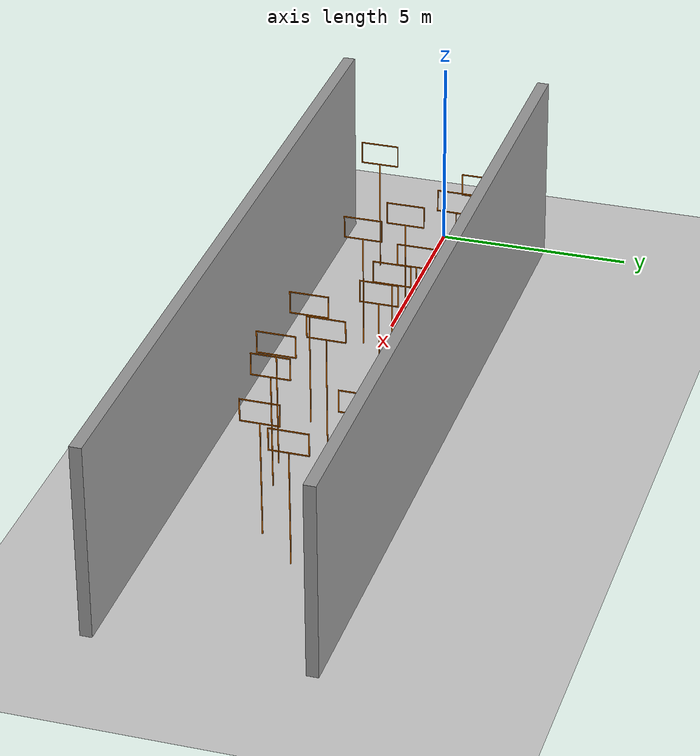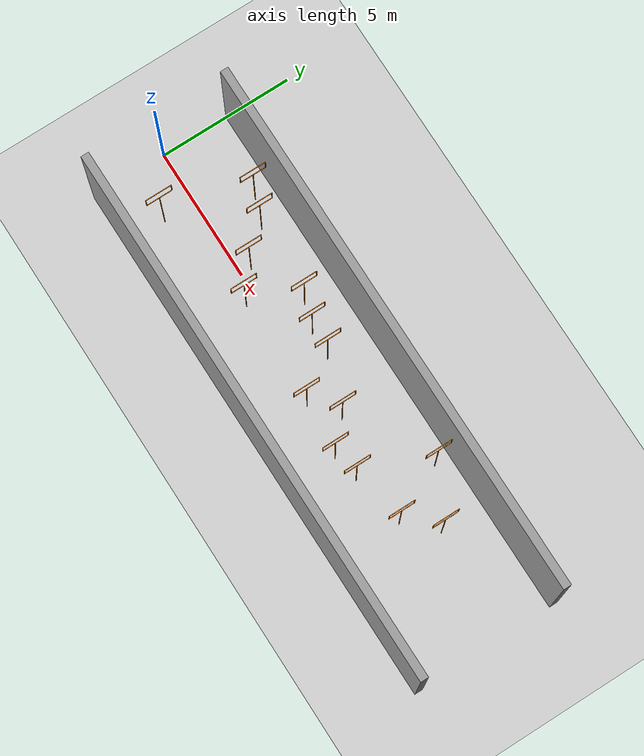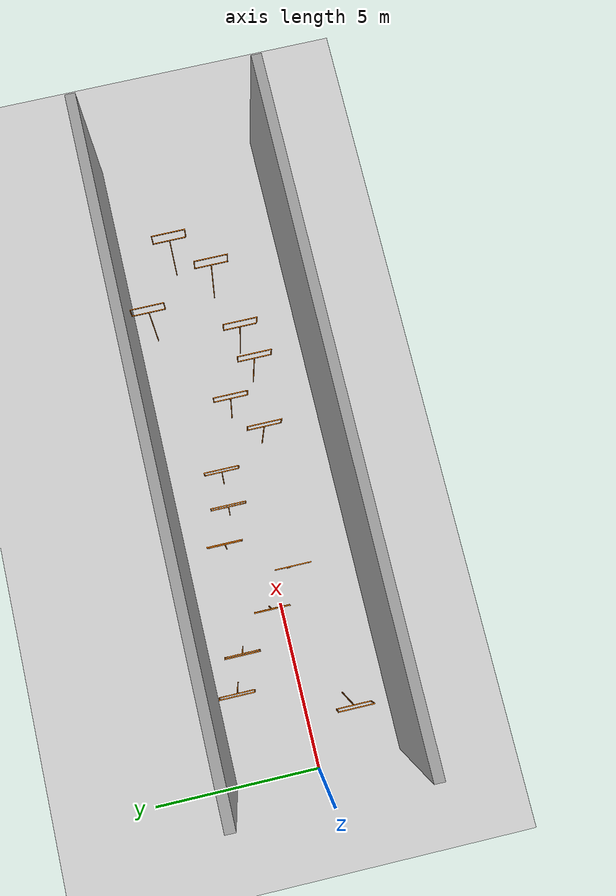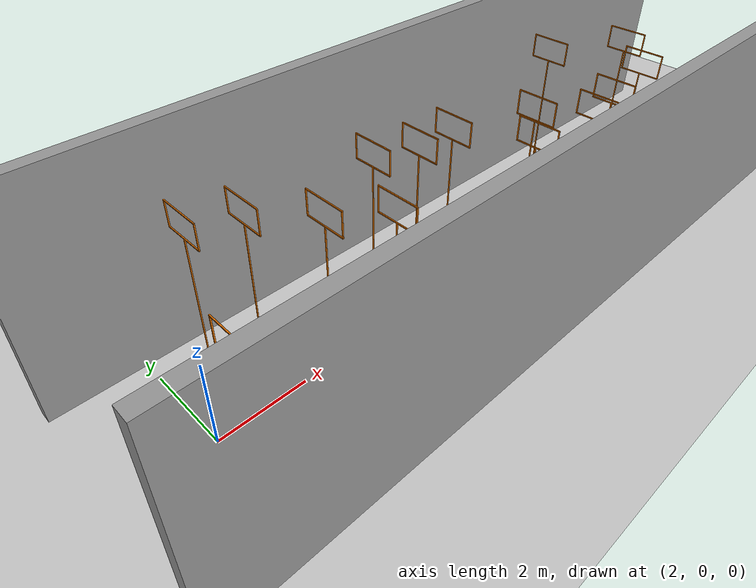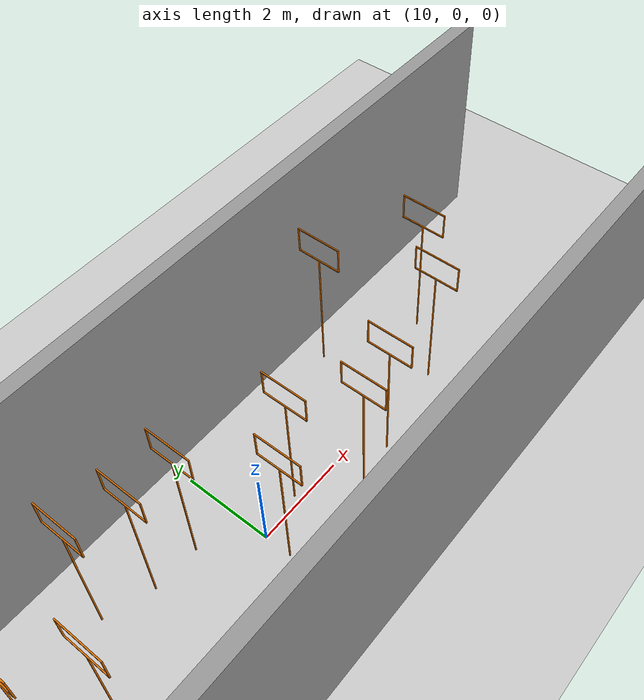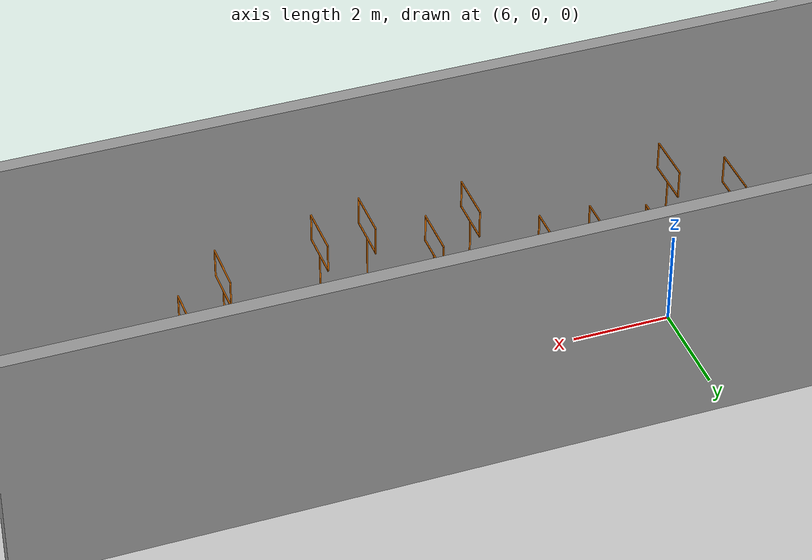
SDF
<sdf version='1.6'>
  <world name='default'>
    <plugin name='ros_interface_plugin' filename='librotors_gazebo_ros_interface_plugin.so' />
    <model name='ground_plane'>
      <static>1</static>
      <link name='link'>
        <collision name='collision'>
          <geometry>
            <plane>
              <normal>0 0 1</normal>
              <size>100 100</size>
            </plane>
          </geometry>
          <surface>
            <friction>
              <ode>
                <mu>100</mu>
                <mu2>50</mu2>
              </ode>
              <torsional>
                <ode/>
              </torsional>
            </friction>
            <contact>
              <ode/>
            </contact>
            <bounce/>
          </surface>
          <max_contacts>10</max_contacts>
        </collision>
        <visual name='visual'>
          <cast_shadows>0</cast_shadows>
          <geometry>
            <plane>
              <normal>0 0 1</normal>
              <size>100 100</size>
            </plane>
          </geometry>
          <material>
            <script>
              <uri>file://media/materials/scripts/gazebo.material</uri>
              <name>Gazebo/Grey</name>
            </script>
          </material>
        </visual>
        <self_collide>0</self_collide>
        <enable_wind>0</enable_wind>
        <kinematic>0</kinematic>
      </link>
    </model>
    <gravity>0 0 -9.8</gravity>
    <magnetic_field>6e-06 2.3e-05 -4.2e-05</magnetic_field>
    <atmosphere type='adiabatic'/>
    <physics name='default_physics' default='0' type='ode'>
      <max_step_size>0.001</max_step_size>
      <real_time_factor>1</real_time_factor>
      <real_time_update_rate>1000</real_time_update_rate>
    </physics>
    <scene>
      <ambient>0.4 0.4 0.4 1</ambient>
      <background>0.7 0.7 0.7 1</background>
      <shadows>1</shadows>
    </scene>
    <wind/>
    <spherical_coordinates>
      <surface_model>EARTH_WGS84</surface_model>
      <latitude_deg>0</latitude_deg>
      <longitude_deg>0</longitude_deg>
      <elevation>0</elevation>
      <heading_deg>0</heading_deg>
    </spherical_coordinates>
    <light name='sun' type='directional'>
      <pose frame=''>0 0 10 -0.3659 0.532611 2.936846</pose>
      <diffuse>0.8 0.8 0.8 1</diffuse>
      <specular>0.2 0.2 0.2 1</specular>
      <direction>0.4864 0.3039 -0.819</direction>
      <attenuation>
        <range>1000</range>
        <constant>0.9</constant>
        <linear>0.01</linear>
        <quadratic>0.001</quadratic>
      </attenuation>
      <cast_shadows>1</cast_shadows>
      <spot>
        <inner_angle>0</inner_angle>
        <outer_angle>0</outer_angle>
        <falloff>0</falloff>
      </spot>
    </light>

    <include>
      <uri>model://gate</uri>
      <name>gate_1</name>
      <pose>2.133424 -0.9237 0.239064 0 0 0</pose>
    </include>
    <include>
      <uri>model://gate</uri>
      <name>gate_2</name>
      <pose>3.133424 2.0830 0.239064 0 0 0</pose>
    </include>
    <include>
      <uri>model://gate</uri>
      <name>gate_3</name>
      <pose>4.133424 1.7060 0.239064 0 0 0</pose>
    </include>
    <include>
      <uri>model://gate</uri>
      <name>gate_4</name>
      <pose>5.133424 0.6510 0.239064 0 0 0</pose>
    </include>
    <include>
      <uri>model://gate</uri>
      <name>gate_5</name>
      <pose>6.133424 -0.1682 0.239064 0 0 0</pose>
    </include>
    <include>
      <uri>model://gate</uri>
      <name>gate_6</name>
      <pose>7.133424 1.5186 0.239064 0 0 0</pose>
    </include>
    <include>
      <uri>model://gate</uri>
      <name>gate_7</name>
      <pose>8.133424 1.1885 0.239064 0 0 0</pose>
    </include>
    <include>
      <uri>model://gate</uri>
      <name>gate_8</name>
      <pose>9.133424 1.1515 0.239064 0 0 0</pose>
    </include>
    <include>
      <uri>model://gate</uri>
      <name>gate_9</name>
      <pose>10.133424 -0.3045 0.239064 0 0 0</pose>
    </include>
    <include>
      <uri>model://gate</uri>
      <name>gate_10</name>
      <pose>11.133424 0.4409 0.239064 0 0 0</pose>
    </include>
    <include>
      <uri>model://gate</uri>
      <name>gate_11</name>
      <pose>12.133424 -0.4824 0.239064 0 0 0</pose>
    </include>
    <include>
      <uri>model://gate</uri>
      <name>gate_12</name>
      <pose>13.133424 -0.2929 0.239064 0 0 0</pose>
    </include>
    <include>
      <uri>model://gate</uri>
      <name>gate_13</name>
      <pose>14.133424 2.1794 0.239064 0 0 0</pose>
    </include>
    <include>
      <uri>model://gate</uri>
      <name>gate_14</name>
      <pose>15.133424 0.1100 0.239064 0 0 0</pose>
    </include>
    <include>
      <uri>model://gate</uri>
      <name>gate_15</name>
      <pose>16.133424 1.1337 0.239064 0 0 0</pose>
    </include>

    <include>
      <uri>model://sidewall</uri>
      <name>wall_1</name>
      <pose>10 2.65 2.5 1.5707963 0 0</pose>
    </include>
    <include>
      <uri>model://sidewall</uri>
      <name>wall_2</name>
      <pose>10 -2.65 2.5 1.5707963 0 0</pose>
    </include>
  </world>
</sdf>
1

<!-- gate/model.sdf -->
<sdf version="1.5">
  <model name="gate">
    <static>true</static>

    <include>
      <uri>model://stand_gate</uri>
      <name>stand</name>
      <pose>0 0 0 0 0 0</pose>
    </include>

    <include>
      <uri>model://side_gate</uri>
      <name>right_gate</name>
      <pose>-0.267448 -0.283849 0.097 0 0 0</pose>
    </include>

    <include>
      <uri>model://side_gate</uri>
      <name>left_gate</name>
      <pose>-0.267448 -1.257056 0.097 0 0 0</pose>
    </include>
    <include>

      <uri>model://top_gate</uri>
      <name>top_gate</name>
      <pose>-0.269443 -0.280891 0.091764 0 0 0</pose>
    </include>
  </model>
</sdf>

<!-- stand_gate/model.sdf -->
<sdf version="1.5">
  <model name="stand_gate">
    <static>true</static>
    <link name='link'>
      <collision name="collision">
        <geometry>
          <mesh>
            <uri>model://stand_gate/meshes/stand_gate.dae</uri>
            <scale>1 1 1</scale>
          </mesh>
        </geometry>
        <surface>
          <contact>
            <collide_bitmask>0xffff</collide_bitmask>
          </contact>
          <friction>
            <ode>
              <mu>100</mu>
              <mu2>50</mu2>
            </ode>
          </friction>
        </surface>
      </collision>
      <visual name='visual'>
        <geometry>
          <mesh>
            <uri>model://stand_gate/meshes/stand_gate.dae</uri>
            <scale>1 1 1</scale>
          </mesh>
        </geometry>
      </visual>
    </link>
  </model>
</sdf>

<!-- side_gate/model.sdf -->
<sdf version="1.5">
  <model name="side_gate">
    <static>true</static>
    <link name='link'>
      <collision name="collision">
        <geometry>
          <mesh>
            <uri>model://side_gate/meshes/side_gate.dae</uri>
            <scale>1 1 1</scale>
          </mesh>
        </geometry>
        <surface>
          <contact>
            <collide_bitmask>0xffff</collide_bitmask>
          </contact>
          <friction>
            <ode>
              <mu>100</mu>
              <mu2>50</mu2>
            </ode>
          </friction>
        </surface>
      </collision>
      <visual name='visual'>
        <geometry>
          <mesh>
            <uri>model://side_gate/meshes/side_gate.dae</uri>
            <scale>1 1 1</scale>
          </mesh>
        </geometry>
      </visual>
    </link>
  </model>
</sdf>

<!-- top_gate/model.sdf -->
<sdf version="1.5">
  <model name="top_gate">
    <static>true</static>
    <link name='link'>
      <collision name="collision">
        <geometry>
          <mesh>
            <uri>model://top_gate/meshes/top_gate.dae</uri>
            <scale>1 1 1</scale>
          </mesh>
        </geometry>
        <surface>
          <contact>
            <collide_bitmask>0xffff</collide_bitmask>
          </contact>
          <friction>
            <ode>
              <mu>100</mu>
              <mu2>50</mu2>
            </ode>
          </friction>
        </surface>
      </collision>
      <visual name='visual'>
        <geometry>
          <mesh>
            <uri>model://top_gate/meshes/top_gate.dae</uri>
            <scale>1 1 1</scale>
          </mesh>
        </geometry>
      </visual>
    </link>
  </model>
</sdf>

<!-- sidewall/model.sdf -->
<sdf version="1.5">
  <model name="sidewall">
    <static>true</static>
    <link name='link'>
      <collision name="collision">
        <geometry>
          <box>
            <size>20 5 0.3</size>
          </box>
        </geometry>
        <surface>
          <contact>
            <collide_bitmask>0xffff</collide_bitmask>
          </contact>
          <friction>
            <ode>
              <mu>100</mu>
              <mu2>50</mu2>
            </ode>
          </friction>
        </surface>
      </collision>
      <visual name='visual'>
        <geometry>
          <box>
            <size>20 5 0.3</size>
          </box>
        </geometry>
        <material>
          <lighting>1</lighting>
          <script>
            <uri>file://media/materials/scripts/gazebo.material</uri>
            <name>Gazebo/Grey</name>
          </script>
        </material>
      </visual>
    </link>
  </model>
</sdf>
